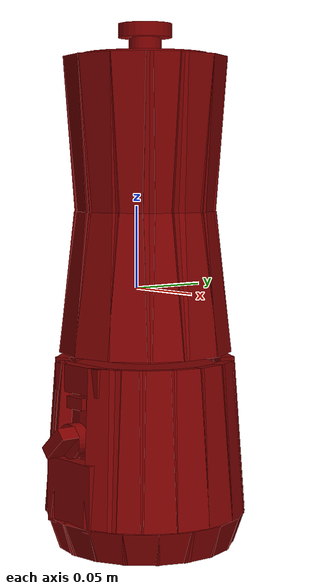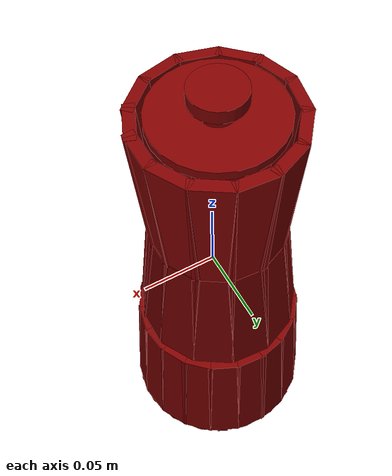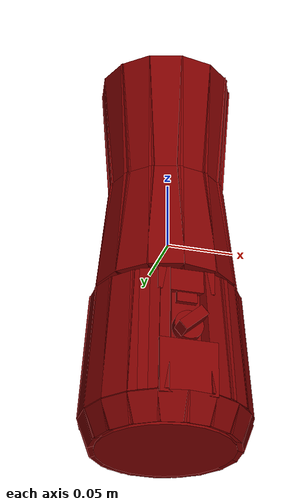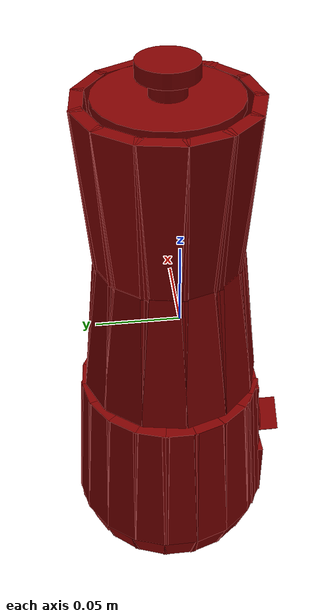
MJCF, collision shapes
<?xml version='1.0' encoding='UTF-8'?>
<mujoco model="model">
  <option timestep="0.002" gravity="0.0 0.0 -9.81"/>
  <compiler angle="radian"/>
  <asset>
    <mesh file="visuals/Blade001.obj" name="Blade001_vis"/>
    <mesh file="visuals/Body001.obj" name="Body001_vis"/>
    <mesh file="visuals/Button001.obj" name="Button001_vis"/>
    <mesh file="visuals/Jug001.obj" name="Jug001_vis"/>
    <mesh file="visuals/Jug001_Clear.obj" name="Jug001_Clear_vis"/>
    <mesh file="visuals/Knob001.obj" name="Knob001_vis"/>
    <mesh file="visuals/Lid001.obj" name="Lid001_vis"/>
    <texture file="visuals/T_BC001.png" name="Body001_material" type="2d"/>
    <material name="Body001_material" rgba="1 1 1 1.0" texture="Body001_material" shininess="0.4472135901451111" specular="1"/>
    <texture file="visuals/T_BC001.png" name="Button001_material" type="2d"/>
    <material name="Button001_material" rgba="1 1 1 1.0" texture="Button001_material" shininess="0.4472135901451111" specular="0.3103448502657381"/>
    <texture file="visuals/T_BC001.png" name="Jug001_Clear_material" type="2d"/>
    <material name="Jug001_Clear_material" rgba="1 1 1 0.800000011920929" texture="Jug001_Clear_material" shininess="0.4472135901451111" specular="0.3103448502657381"/>
    <texture file="visuals/T_BC001.png" name="Blade001_material" type="2d"/>
    <material name="Blade001_material" rgba="1 1 1 1.0" texture="Blade001_material" shininess="0.4472135901451111" specular="0.3103448502657381"/>
    <texture file="visuals/T_BC001.png" name="Jug001_material" type="2d"/>
    <material name="Jug001_material" rgba="1 1 1 1.0" texture="Jug001_material" shininess="0.4472135901451111" specular="0.3103448502657381"/>
    <texture file="visuals/T_BC001.png" name="Lid001_material" type="2d"/>
    <material name="Lid001_material" rgba="1 1 1 1.0" texture="Lid001_material" shininess="0.4472135901451111" specular="0.3103448502657381"/>
    <texture file="visuals/T_BC001.png" name="Knob001_material" type="2d"/>
    <material name="Knob001_material" rgba="1 1 1 1.0" texture="Knob001_material" shininess="0.4472135901451111" specular="0.3103448502657381"/>
  </asset>
  <default>
    <default class="visual">
      <geom conaffinity="0" contype="0" group="1" type="mesh"/>
    </default>
    <default class="collision">
      <geom group="0" rgba="0.5 0 0 0.5"/>
    </default>
    <default class="spawn">
      <geom group="0" rgba="1 1 1 0.5" contype="0" conaffinity="0"/>
      <site group="0" rgba="1 1 1 0.5"/>
    </default>
    <default class="region">
      <geom group="1" conaffinity="0" contype="0" rgba="0 1 0 0"/>
    </default>
  </default>
  <worldbody>
    <body>
      <body name="object">
        <geom mesh="Body001_vis" type="mesh" solimp="0.998 0.998 0.001" solref="0.001 1" friction="0.95 0.3 0.1" class="visual" material="Body001_material"/>
        <geom class="collision" type="cylinder" pos="-0.00000350 0.00646550 -0.10880267" size="0.05027838423848152 0.050639983266592026" quat="1.0 0.0 0.0 0.0"/>
        <geom class="collision" type="box" pos="-0.00043333 -0.04804078 -0.12045336" size="0.02084752358496189 0.00483823474496603 0.020090635865926743" quat="1.0 0.0 0.0 0.0"/>
        <geom class="collision" type="box" pos="-0.00017542 -0.04277979 -0.05224721" size="0.02063511684536934 0.00401512673124671 0.008426142856478691" quat="1.0 0.0 0.0 0.0"/>
        <geom class="collision" type="box" pos="-0.05364602 0.00646552 -0.14757853" size="0.004174570087343454 0.010854005813598633 0.010854005813598633" quat="0.985356867313385 5.595070839132361e-16 -0.17050467431545258 -2.290881262467792e-08"/>
        <geom class="collision" type="box" pos="-0.05405436 0.00646551 -0.09121377" size="0.004025053698569536 0.010854005813598633 0.047436073422431946" quat="0.9993108510971069 3.921987009518433e-16 0.03711973503232002 4.987374513376608e-09"/>
        <geom class="collision" type="box" pos="-0.05030481 0.02510148 -0.14757853" size="0.004174570087343454 0.010854005813598633 0.010854005813598633" quat="0.9698918461799622 -0.03008975274860859 -0.16782867908477783 -0.17389048635959625"/>
        <geom class="collision" type="box" pos="-0.04106523 0.04098297 -0.14757853" size="0.004174570087343454 0.010854005813598633 0.010854004882276058" quat="0.9257819652557373 -0.05838760733604431 -0.16019588708877563 -0.33742547035217285"/>
        <geom class="collision" type="box" pos="-0.02651591 0.05309825 -0.14757853" size="0.004174570087343454 0.010854005813598633 0.010854004882276058" quat="0.8517047762870789 -0.08574175089597702 -0.14737769961357117 -0.4955069422721863"/>
        <geom class="collision" type="box" pos="-0.01005051 -0.04622776 -0.14757853" size="0.004174570087343454 0.010854005813598633 0.010854004882276058" quat="0.7592028379440308 0.1086895614862442 -0.13137130439281464 0.6281235814094543"/>
        <geom class="collision" type="box" pos="-0.02773087 -0.03945523 -0.14757853" size="0.004174570087343454 0.010854005813598633 0.010854004882276058" quat="0.8581354022026062 0.08379990607500076 -0.14849039912223816 0.4842848777770996"/>
        <geom class="collision" type="box" pos="-0.04160080 -0.02740462 -0.14757853" size="0.004174570087343454 0.010854004882276058 0.010854004882276058" quat="0.9283958673477173 0.057131316512823105 -0.1606481820344925 0.33016547560691833"/>
        <geom class="collision" type="box" pos="-0.05077667 -0.01084365 -0.14757853" size="0.004174570087343454 0.010854005813598633 0.010854006744921207" quat="0.9720907211303711 0.027884379029273987 -0.16820929944515228 0.1611451506614685"/>
        <geom class="collision" type="box" pos="0.04984379 -0.01335288 -0.14757853" size="0.004174570087343454 0.010854004882276058 0.010854004882276058" quat="0.18532882630825043 0.16746164858341217 -0.03206900879740715 0.9677713513374329"/>
        <geom class="collision" type="box" pos="0.03985387 -0.02943592 -0.14757853" size="0.004174570087343454 0.010854005813598633 0.010854004882276058" quat="0.35320740938186646 0.15917399525642395 -0.06111845746636391 0.9198764562606812"/>
        <geom class="collision" type="box" pos="0.02540053 -0.04078020 -0.14757853" size="0.004174570087343454 0.010854005813598633 0.010854004882276058" quat="0.5055273175239563 0.14635516703128815 -0.08747565746307373 0.8457956910133362"/>
        <geom class="collision" type="box" pos="0.00740456 -0.04666303 -0.14757853" size="0.004174570087343454 0.010854005813598633 0.010854004882276058" quat="0.646854817867279 0.12862089276313782 -0.1119307428598404 0.7433081865310669"/>
        <geom class="collision" type="box" pos="0.02917042 0.05148109 -0.14757853" size="0.004174570087343454 0.010854004882276058 0.010854005813598633" quat="0.4705747365951538 -0.1498044729232788 -0.08142750710248947 -0.8657295107841492"/>
        <geom class="collision" type="box" pos="0.04299215 0.03854189 -0.14757853" size="0.004174570087343454 0.010854006744921207 0.010854005813598633" quat="0.3104095458984375 -0.16182319819927216 -0.05371277779340744 -0.9351866841316223"/>
        <geom class="collision" type="box" pos="0.05129452 0.02215097 -0.14757853" size="0.004174570087343454 0.010854005813598633 0.010854004882276058" quat="0.1456633359193802 -0.16863130033016205 -0.02520536445081234 -0.9745308756828308"/>
        <geom class="collision" type="box" pos="0.05354862 0.00335250 -0.14757853" size="0.004174570087343454 0.010854005813598633 0.010854006744921207" quat="0.028603164479136467 0.17043240368366241 -0.004949431866407394 0.9849417209625244"/>
        <geom class="collision" type="box" pos="-0.01982993 0.05630959 -0.14757853" size="0.004174570087343454 0.010854005813598633 0.010854004882276058" quat="0.8154098391532898 -0.09572560340166092 -0.14109724760055542 -0.5532042980194092"/>
        <geom class="collision" type="box" pos="-0.00184653 0.06007635 -0.14757853" size="0.004174570087343454 0.010854004882276058 0.010854004882276058" quat="0.7086209058761597 -0.11847569048404694 -0.1226186603307724 -0.6846784949302673"/>
        <geom class="collision" type="box" pos="0.01689322 0.05737740 -0.14757853" size="0.004174570087343454 0.010854005813598633 0.010854005813598633" quat="0.5766705870628357 -0.13825532793998718 -0.0997861847281456 -0.7989863753318787"/>
        <geom class="collision" type="box" pos="-0.02775627 -0.03991638 -0.09121376" size="0.004025053698569536 0.010854003950953484 0.04743606224656105" quat="0.8693017959594727 -0.018308410421013832 0.0322905033826828 0.49288591742515564"/>
        <geom class="collision" type="box" pos="-0.04164471 -0.02799469 -0.09121377" size="0.004025053698569536 0.010854006744921207 0.047436073422431946" quat="0.9402043223381042 -0.012576751410961151 0.034924205392599106 0.33858224749565125"/>
        <geom class="collision" type="box" pos="-0.05095529 -0.01157364 -0.09121377" size="0.004025053698569536 0.010854006744921207 0.047436073422431946" quat="0.9848824739456177 -0.006284966599196196 0.03658371418714523 0.16919994354248047"/>
        <geom class="collision" type="box" pos="-0.01197282 0.05917443 -0.09121377" size="0.004025053698569536 0.010854005813598633 0.047436073422431946" quat="0.7809489965438843 0.023159775882959366 0.029008612036705017 -0.6234908103942871"/>
        <geom class="collision" type="box" pos="-0.05137957 0.02325818 -0.09121377" size="0.004025053698569536 0.010854004882276058 0.047436073422431946" quat="0.9868703484535217 0.0058389282785356045 0.03665772080421448 -0.1571912169456482"/>
        <geom class="collision" type="box" pos="-0.04282941 0.03944181 -0.09121377" size="0.004025053698569536 0.010854005813598633 0.047436073422431946" quat="0.9460065364837646 0.011961391195654869 0.035139743238687515 -0.3220151960849762"/>
        <geom class="collision" type="box" pos="-0.02887783 0.05215760 -0.09121377" size="0.004025053698569536 0.010854005813598633 0.047436073422431946" quat="0.8752408027648926 0.01791374571621418 0.032511115074157715 -0.48226097226142883"/>
        <geom class="collision" type="box" pos="0.03789883 0.04500001 -0.09121377" size="0.004025053698569536 0.010854004882276058 0.047436073422431946" quat="0.3862343728542328 0.034235093742609024 0.014346794225275517 -0.9216535091400146"/>
        <geom class="collision" type="box" pos="0.00462902 0.06031748 -0.09121377" size="0.004025053698569536 0.010854005813598633 0.047436073422431946" quat="0.6756603717803955 0.027349235489964485 0.025097554549574852 -0.7362779378890991"/>
        <geom class="collision" type="box" pos="0.02286499 0.05544026 -0.09121377" size="0.004025053698569536 0.010854004882276058 0.047436073422431946" quat="0.5367090106010437 0.031311675906181335 0.019936243072152138 -0.8429505228996277"/>
        <geom class="collision" type="box" pos="0.04596761 -0.02196252 -0.09121377" size="0.004025053698569536 0.010854005813598633 0.047436073422431946" quat="0.2732015550136566 -0.03570559248328209 0.010148162953555584 0.9612403512001038"/>
        <geom class="collision" type="box" pos="0.04799519 0.03131748 -0.09121377" size="0.004025053698569536 0.010854005813598633 0.047436073422431946" quat="0.23645034432411194 0.03606566786766052 0.008783024735748768 -0.970934271812439"/>
        <geom class="collision" type="box" pos="0.05353733 0.01387329 -0.09121376" size="0.004025053698569536 0.010854005813598633 0.04743606969714165" quat="0.06864112615585327 0.03703195974230766 0.002549690892919898 -0.996950626373291"/>
        <geom class="collision" type="box" pos="0.05281948 -0.00498998 -0.09121377" size="0.004025053698569536 0.010854004882276058 0.047436073422431946" quat="0.10650292783975601 -0.03690831735730171 0.003956086467951536 0.9936192631721497"/>
        <geom class="collision" type="box" pos="0.03453228 -0.03511304 -0.09121377" size="0.004025053698569536 0.010854005813598633 0.047436073422431946" quat="0.4245893955230713 -0.033602576702833176 0.01577151007950306 0.9046247601509094"/>
        <geom class="collision" type="box" pos="0.02250941 -0.04267372 -0.09121375" size="0.004025053698569536 0.010854005813598633 0.04743606597185135" quat="0.5397603511810303 -0.031239204108715057 0.0200495645403862 0.840999960899353"/>
        <geom class="collision" type="box" pos="-0.02198797 -0.04291240 -0.09121375" size="0.004025051835924387 0.010854003019630909 0.047436054795980453" quat="0.838092565536499 -0.02021685056388378 0.031131194904446602 0.5442637205123901"/>
        <body name="Button001">
          <joint axis="0.0 1.0 0.0" pos="-0.00003876 -0.04566293 -0.06626846" limited="true" name="Button001_joint" range="0.0 0.002" type="slide" damping="1" frictionloss="1" armature=".01" stiffness="0.05"/>
          <geom mesh="Button001_vis" type="mesh" solimp="0.998 0.998 0.001" solref="0.001 1" friction="0.95 0.3 0.1" class="visual" material="Button001_material"/>
          <geom class="collision" type="box" pos="-0.00023299 -0.04643640 -0.06612332" size="0.00738384947180748 0.0018029806669801474 0.003648989135399461" quat="1.0 0.0 0.0 0.0"/>
        </body>
        <body name="Jug001_Clear">
          <geom class="region" name="reg_int" type="box" pos="-3.500000000000031e-06 0.006465499999999999 0.055304735" size="0.02442721 0.02442721 0.076867555"/>
          <joint axis="0.0 0.0 1.0" pos="-0.00008262 0.00657820 0.04112360" limited="true" name="Jug001_Clear_joint" range="0.0 0.05" type="slide" damping="1" frictionloss="1" armature=".01" stiffness="0.05"/>
          <geom mesh="Jug001_Clear_vis" type="mesh" solimp="0.998 0.998 0.001" solref="0.001 1" friction="0.95 0.3 0.1" class="visual" material="Jug001_Clear_material"/>
          <geom class="collision" type="box" pos="0.04333248 0.00646550 0.00355366" size="0.0035044727846980095 0.012674807570874691 0.04332708194851875" quat="0.9983056783676147 2.063642039505176e-15 -0.05818738788366318 -7.81798892290908e-09"/>
          <geom class="collision" type="box" pos="0.04132131 0.00646551 0.09231527" size="0.0035068036522716284 0.012674807570874691 0.048212192952632904" quat="0.9992659687995911 2.5494105643160707e-15 0.03830775246024132 5.1469943862514356e-09"/>
          <geom class="collision" type="box" pos="0.03796790 0.02735042 0.00355366" size="0.003504473017528653 0.012674807570874691 0.04332708567380905" quat="0.9669170379638672 0.014476297423243523 -0.05635787919163704 0.24836596846580505"/>
          <geom class="collision" type="box" pos="0.03620569 0.02638118 0.09231527" size="0.003506803885102272 0.012674806639552116 0.0482121966779232" quat="0.9678471684455872 -0.009530461393296719 0.03710317239165306 0.248604878783226"/>
          <geom class="collision" type="box" pos="0.02369902 0.04274494 0.00355366" size="0.003504473017528653 0.012674807570874691 0.04332708194851875" quat="0.8779835104942322 0.02769414521753788 -0.05117426812648773 0.4751411974430084"/>
          <geom class="collision" type="box" pos="0.02259900 0.04106126 0.09231527" size="0.003506803885102272 0.012674807570874691 0.0482121966779232" quat="0.8788281083106995 -0.018232425674796104 0.03369055688381195 0.47559821605682373"/>
          <geom class="collision" type="box" pos="0.00328072 0.04967685 0.00355366" size="0.003504473017528653 0.012674807570874691 0.04332708194851875" quat="0.732168972492218 0.0395549014210701 -0.04267530143260956 0.6786330938339233"/>
          <geom class="collision" type="box" pos="0.00312829 0.04767146 0.09231527" size="0.003506803885102272 0.012674807570874691 0.0482121966779232" quat="0.7328732013702393 -0.02604093588888645 0.028095250949263573 0.6792859435081482"/>
          <geom class="collision" type="box" pos="-0.01692824 0.04635987 0.00355366" size="0.003504473017528653 0.012674807570874691 0.04332708194851875" quat="0.5510849952697754 0.048518408089876175 -0.032120585441589355 0.832417905330658"/>
          <geom class="collision" type="box" pos="-0.01614279 0.04450841 0.09231527" size="0.0035068036522716284 0.012674807570874691 0.0482121966779232" quat="0.5516152381896973 -0.03194207698106766 0.02114659734070301 0.8332185745239258"/>
          <geom class="collision" type="box" pos="-0.03405942 0.03326479 0.00355366" size="0.003504473017528653 0.012674807570874691 0.04332708194851875" quat="0.3266628086566925 0.054984088987112045 -0.019039904698729515 0.9433481097221375"/>
          <geom class="collision" type="box" pos="-0.03247893 0.03202105 0.09231527" size="0.003506803885102272 0.012674807570874691 0.0482121966779232" quat="0.3269769251346588 -0.03619876131415367 0.012534912675619125 0.9442555904388428"/>
          <geom class="collision" type="box" pos="-0.04265868 0.01411681 0.00355366" size="0.003504473017528653 0.012674807570874691 0.04332708939909935" quat="0.08847763389348984 0.057958297431468964 -0.00515701062977314 0.9943771958351135"/>
          <geom class="collision" type="box" pos="-0.04067911 0.01376172 0.09231527" size="0.0035068036522716284 0.012674807570874691 0.048212192952632904" quat="0.0885627493262291 -0.03815668821334839 0.0033951092045754194 0.995333731174469"/>
          <geom class="collision" type="box" pos="-0.04106578 -0.00738717 0.00355365" size="0.003504473017528653 0.012674807570874691 0.04332708194851875" quat="0.16169296205043793 -0.057419054210186005 -0.009424450807273388 -0.9851241707801819"/>
          <geom class="collision" type="box" pos="-0.03916012 -0.00674430 0.09231527" size="0.003506803885102272 0.012674807570874691 0.0482121966779232" quat="0.1618485003709793 0.03780171275138855 0.006204572971910238 -0.9860718250274658"/>
          <geom class="collision" type="box" pos="-0.03033342 -0.02448774 0.00355365" size="0.003504473017528653 0.012674807570874691 0.04332708194851875" quat="0.3867202699184418 -0.053644176572561264 -0.022540420293807983 -0.9203595519065857"/>
          <geom class="collision" type="box" pos="-0.02892584 -0.02305124 0.09231527" size="0.0035068041179329157 0.012674807570874691 0.0482121966779232" quat="0.38709238171577454 0.03531663864850998 0.014839478768408298 -0.9212448000907898"/>
          <geom class="collision" type="box" pos="-0.01166157 -0.03527293 0.00355365" size="0.0035044727846980095 0.012674808502197266 0.04332708194851875" quat="0.6035350561141968 -0.04634973034262657 -0.035177696496248245 -0.7952104806900024"/>
          <geom class="collision" type="box" pos="-0.01112052 -0.03333590 0.09231527" size="0.0035068036522716284 0.012674807570874691 0.0482121966779232" quat="0.6041155457496643 0.03051433339715004 0.023159237578511238 -0.7959754467010498"/>
          <geom class="collision" type="box" pos="0.00932065 -0.03585550 0.00355366" size="0.003504473017528653 0.012674807570874691 0.04332708194851875" quat="0.7781533598899841 -0.0364505834877491 -0.04535554721951485 -0.6253731846809387"/>
          <geom class="collision" type="box" pos="0.00888793 -0.03389143 0.09231527" size="0.0035068041179329157 0.012674807570874691 0.0482121966779232" quat="0.7789018750190735 0.023997221142053604 0.029859796166419983 -0.6259747743606567"/>
          <geom class="collision" type="box" pos="0.02856218 -0.02612298 0.00355365" size="0.0035044727846980095 0.012674806639552116 0.04332708194851875" quat="0.9092717170715332 -0.024020615965127945 -0.052997905761003494 -0.41211551427841187"/>
          <geom class="collision" type="box" pos="0.02723648 -0.02461058 0.09231527" size="0.003506803885102272 0.012674806639552116 0.0482121966779232" quat="0.9101463556289673 0.01581396348774433 0.03489115461707115 -0.41251200437545776"/>
          <geom class="collision" type="box" pos="0.03958975 -0.01115216 0.00355366" size="0.003504473017528653 0.012674807570874691 0.04332708194851875" quat="0.9765130281448364 -0.012091603130102158 -0.05691717192530632 -0.20745247602462769"/>
          <geom class="collision" type="box" pos="0.03775227 -0.01033453 0.09231527" size="0.0035068041179329157 0.012674807570874691 0.0482121966779232" quat="0.9774523973464966 0.007960498332977295 0.03747131675481796 -0.2076520472764969"/>
          <body name="Blade001">
            <joint axis="0.0 0.0 1.0" pos="-0.00000250 0.00644435 -0.03668665" limited="false" name="Blade001_joint" range="0 360" type="hinge" damping="1" frictionloss="1" armature=".01" stiffness="0.05"/>
            <geom mesh="Blade001_vis" type="mesh" solimp="0.998 0.998 0.001" solref="0.001 1" friction="0.95 0.3 0.1" class="visual" material="Blade001_material"/>
            <geom class="collision" type="cylinder" pos="-0.00000350 0.00646550 -0.03204990" size="0.031703922897577286 0.011009951122105122" quat="1.0 0.0 0.0 0.0"/>
          </body>
          <body name="Jug001">
            <geom mesh="Jug001_vis" type="mesh" solimp="0.998 0.998 0.001" solref="0.001 1" friction="0.95 0.3 0.1" class="visual" material="Jug001_material"/>
            <geom class="collision" type="cylinder" pos="-0.00000350 0.00646550 -0.05209770" size="0.044104933738708496 0.004458223003894091" quat="1.0 0.0 0.0 0.0"/>
            <geom class="collision" type="box" pos="0.04333248 0.00646550 0.00355366" size="0.0035044727846980095 0.012674807570874691 0.04332708194851875" quat="0.9983056783676147 2.063642039505176e-15 -0.05818738788366318 -7.81798892290908e-09"/>
            <geom class="collision" type="box" pos="0.04132131 0.00646551 0.09231527" size="0.0035068036522716284 0.012674807570874691 0.048212192952632904" quat="0.9992659687995911 2.5494105643160707e-15 0.03830775246024132 5.1469943862514356e-09"/>
            <geom class="collision" type="box" pos="0.03796790 0.02735042 0.00355366" size="0.003504473017528653 0.012674807570874691 0.04332708567380905" quat="0.9669170379638672 0.014476297423243523 -0.05635787919163704 0.24836596846580505"/>
            <geom class="collision" type="box" pos="0.03620569 0.02638118 0.09231527" size="0.003506803885102272 0.012674806639552116 0.0482121966779232" quat="0.9678471684455872 -0.009530461393296719 0.03710317239165306 0.248604878783226"/>
            <geom class="collision" type="box" pos="0.02369902 0.04274494 0.00355366" size="0.003504473017528653 0.012674807570874691 0.04332708194851875" quat="0.8779835104942322 0.02769414521753788 -0.05117426812648773 0.4751411974430084"/>
            <geom class="collision" type="box" pos="0.02259900 0.04106126 0.09231527" size="0.003506803885102272 0.012674807570874691 0.0482121966779232" quat="0.8788281083106995 -0.018232425674796104 0.03369055688381195 0.47559821605682373"/>
            <geom class="collision" type="box" pos="0.00328072 0.04967685 0.00355366" size="0.003504473017528653 0.012674807570874691 0.04332708194851875" quat="0.732168972492218 0.0395549014210701 -0.04267530143260956 0.6786330938339233"/>
            <geom class="collision" type="box" pos="0.00312829 0.04767146 0.09231527" size="0.003506803885102272 0.012674807570874691 0.0482121966779232" quat="0.7328732013702393 -0.02604093588888645 0.028095250949263573 0.6792859435081482"/>
            <geom class="collision" type="box" pos="-0.01692824 0.04635987 0.00355366" size="0.003504473017528653 0.012674807570874691 0.04332708194851875" quat="0.5510849952697754 0.048518408089876175 -0.032120585441589355 0.832417905330658"/>
            <geom class="collision" type="box" pos="-0.01614279 0.04450841 0.09231527" size="0.0035068036522716284 0.012674807570874691 0.0482121966779232" quat="0.5516152381896973 -0.03194207698106766 0.02114659734070301 0.8332185745239258"/>
            <geom class="collision" type="box" pos="-0.03405942 0.03326479 0.00355366" size="0.003504473017528653 0.012674807570874691 0.04332708194851875" quat="0.3266628086566925 0.054984088987112045 -0.019039904698729515 0.9433481097221375"/>
            <geom class="collision" type="box" pos="-0.03247893 0.03202105 0.09231527" size="0.003506803885102272 0.012674807570874691 0.0482121966779232" quat="0.3269769251346588 -0.03619876131415367 0.012534912675619125 0.9442555904388428"/>
            <geom class="collision" type="box" pos="-0.04265868 0.01411681 0.00355366" size="0.003504473017528653 0.012674807570874691 0.04332708939909935" quat="0.08847763389348984 0.057958297431468964 -0.00515701062977314 0.9943771958351135"/>
            <geom class="collision" type="box" pos="-0.04067911 0.01376172 0.09231527" size="0.0035068036522716284 0.012674807570874691 0.048212192952632904" quat="0.0885627493262291 -0.03815668821334839 0.0033951092045754194 0.995333731174469"/>
            <geom class="collision" type="box" pos="-0.04106578 -0.00738717 0.00355365" size="0.003504473017528653 0.012674807570874691 0.04332708194851875" quat="0.16169296205043793 -0.057419054210186005 -0.009424450807273388 -0.9851241707801819"/>
            <geom class="collision" type="box" pos="-0.03916012 -0.00674430 0.09231527" size="0.003506803885102272 0.012674807570874691 0.0482121966779232" quat="0.1618485003709793 0.03780171275138855 0.006204572971910238 -0.9860718250274658"/>
            <geom class="collision" type="box" pos="-0.03033342 -0.02448774 0.00355365" size="0.003504473017528653 0.012674807570874691 0.04332708194851875" quat="0.3867202699184418 -0.053644176572561264 -0.022540420293807983 -0.9203595519065857"/>
            <geom class="collision" type="box" pos="-0.02892584 -0.02305124 0.09231527" size="0.0035068041179329157 0.012674807570874691 0.0482121966779232" quat="0.38709238171577454 0.03531663864850998 0.014839478768408298 -0.9212448000907898"/>
            <geom class="collision" type="box" pos="-0.01166157 -0.03527293 0.00355365" size="0.0035044727846980095 0.012674808502197266 0.04332708194851875" quat="0.6035350561141968 -0.04634973034262657 -0.035177696496248245 -0.7952104806900024"/>
            <geom class="collision" type="box" pos="-0.01112052 -0.03333590 0.09231527" size="0.0035068036522716284 0.012674807570874691 0.0482121966779232" quat="0.6041155457496643 0.03051433339715004 0.023159237578511238 -0.7959754467010498"/>
            <geom class="collision" type="box" pos="0.00932065 -0.03585550 0.00355366" size="0.003504473017528653 0.012674807570874691 0.04332708194851875" quat="0.7781533598899841 -0.0364505834877491 -0.04535554721951485 -0.6253731846809387"/>
            <geom class="collision" type="box" pos="0.00888793 -0.03389143 0.09231527" size="0.0035068041179329157 0.012674807570874691 0.0482121966779232" quat="0.7789018750190735 0.023997221142053604 0.029859796166419983 -0.6259747743606567"/>
            <geom class="collision" type="box" pos="0.02856218 -0.02612298 0.00355365" size="0.0035044727846980095 0.012674806639552116 0.04332708194851875" quat="0.9092717170715332 -0.024020615965127945 -0.052997905761003494 -0.41211551427841187"/>
            <geom class="collision" type="box" pos="0.02723648 -0.02461058 0.09231527" size="0.003506803885102272 0.012674806639552116 0.0482121966779232" quat="0.9101463556289673 0.01581396348774433 0.03489115461707115 -0.41251200437545776"/>
            <geom class="collision" type="box" pos="0.03958975 -0.01115216 0.00355366" size="0.003504473017528653 0.012674807570874691 0.04332708194851875" quat="0.9765130281448364 -0.012091603130102158 -0.05691717192530632 -0.20745247602462769"/>
            <geom class="collision" type="box" pos="0.03775227 -0.01033453 0.09231527" size="0.0035068041179329157 0.012674807570874691 0.0482121966779232" quat="0.9774523973464966 0.007960498332977295 0.03747131675481796 -0.2076520472764969"/>
          </body>
          <body name="Lid001">
            <joint axis="0.0 0.0 1.0" pos="-0.00011004 0.00657798 0.14547412" limited="true" name="Lid001_joint" range="0.0 0.05" type="slide" damping="0" frictionloss="0" armature="0" stiffness="0"/>
            <geom mesh="Lid001_vis" type="mesh" solimp="0.998 0.998 0.001" solref="0.001 1" friction="0.95 0.3 0.1" class="visual" material="Lid001_material"/>
            <geom class="collision" type="cylinder" pos="-0.00000350 0.00646550 0.13929724" size="0.03886698558926582 0.002786661498248577" quat="1.0 0.0 0.0 0.0"/>
            <geom class="collision" type="cylinder" pos="-0.00000350 0.00646550 0.14753267" size="0.009959487244486809 0.006921137683093548" quat="1.0 0.0 0.0 0.0"/>
            <geom class="collision" type="cylinder" pos="-0.00000350 0.00646550 0.15576809" size="0.016482291743159294 0.00413268618285656" quat="1.0 0.0 0.0 0.0"/>
          </body>
        </body>
        <body name="Knob001">
          <joint axis="0.0 1.0 0.0" pos="-0.00005389 -0.04761843 -0.08866108" limited="true" name="Knob001_joint" range="0.0 4.537856055185257" type="hinge" damping="0.05" armature="0.001"/>
          <geom mesh="Knob001_vis" type="mesh" solimp="0.998 0.998 0.001" solref="0.001 1" friction="0.95 0.3 0.1" class="visual" material="Knob001_material"/>
          <geom class="collision" type="cylinder" pos="-0.00005389 -0.04848021 -0.08866108" size="0.010512183420360088 0.0038811657577753067" quat="0.7071067094802856 0.7071068286895752 0.0 0.0"/>
          <geom class="collision" type="box" pos="-0.00020290 -0.05809158 -0.08858658" size="0.003975735977292061 0.006238631904125214 0.010526491329073906" quat="0.9099612236022949 0.0 0.41469329595565796 0.0"/>
        </body>
        <geom class="region" name="reg_main" type="box" pos="2.1500000000132524e-07 0.005763934999999998 2.500000000071889e-08" size="0.058867235000000004 0.059565095 0.16028904500000002"/>
      </body>
    </body>
  </worldbody>
  <actuator>
    <motor name="Button001_joint_actuator" joint="Button001_joint" gear="0.5"/>
    <motor name="Jug001_Clear_joint_actuator" joint="Jug001_Clear_joint" gear="30"/>
    <motor name="Knob001_joint_actuator" joint="Knob001_joint" gear="10"/>
    <motor name="Blade001_joint_actuator" joint="Blade001_joint" gear="20"/>
    <motor name="Lid001_joint_actuator" joint="Lid001_joint" gear="10"/>
  </actuator>
</mujoco>
